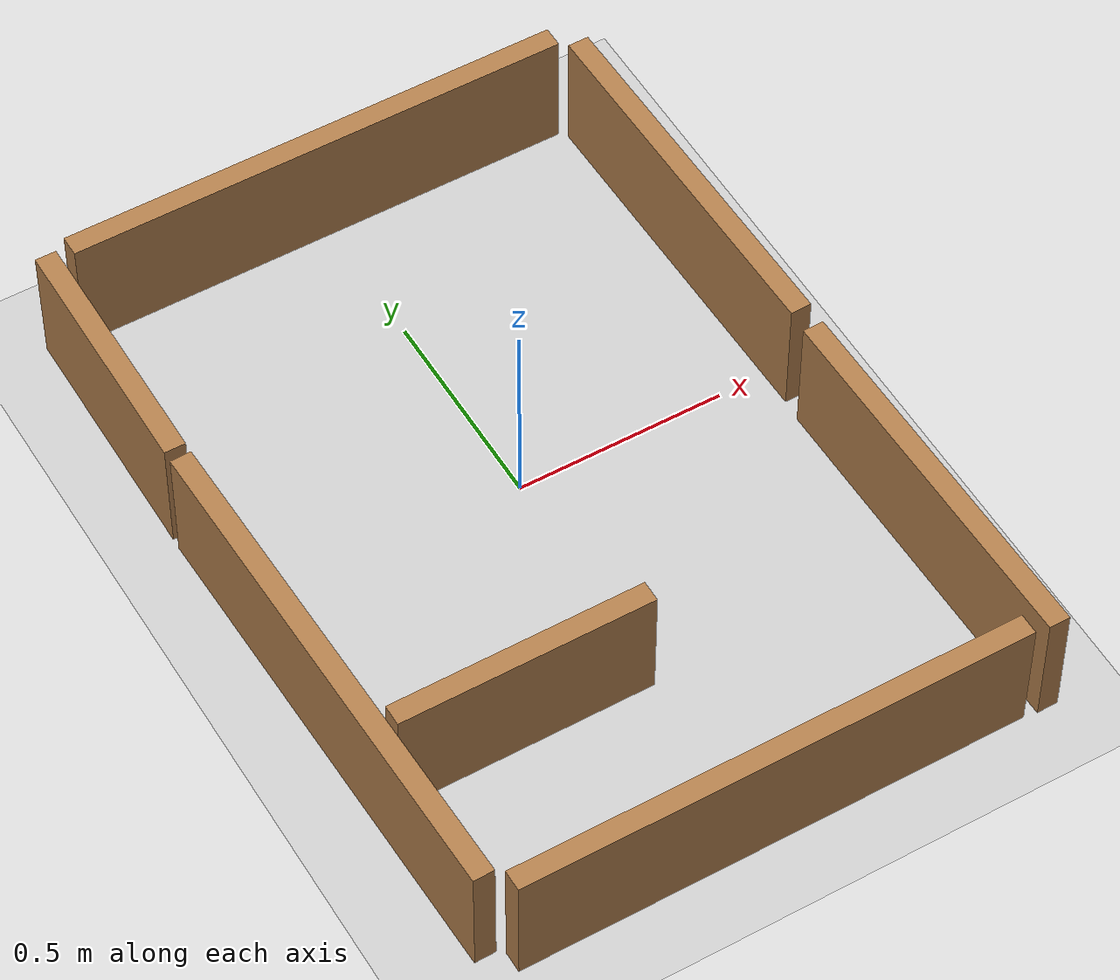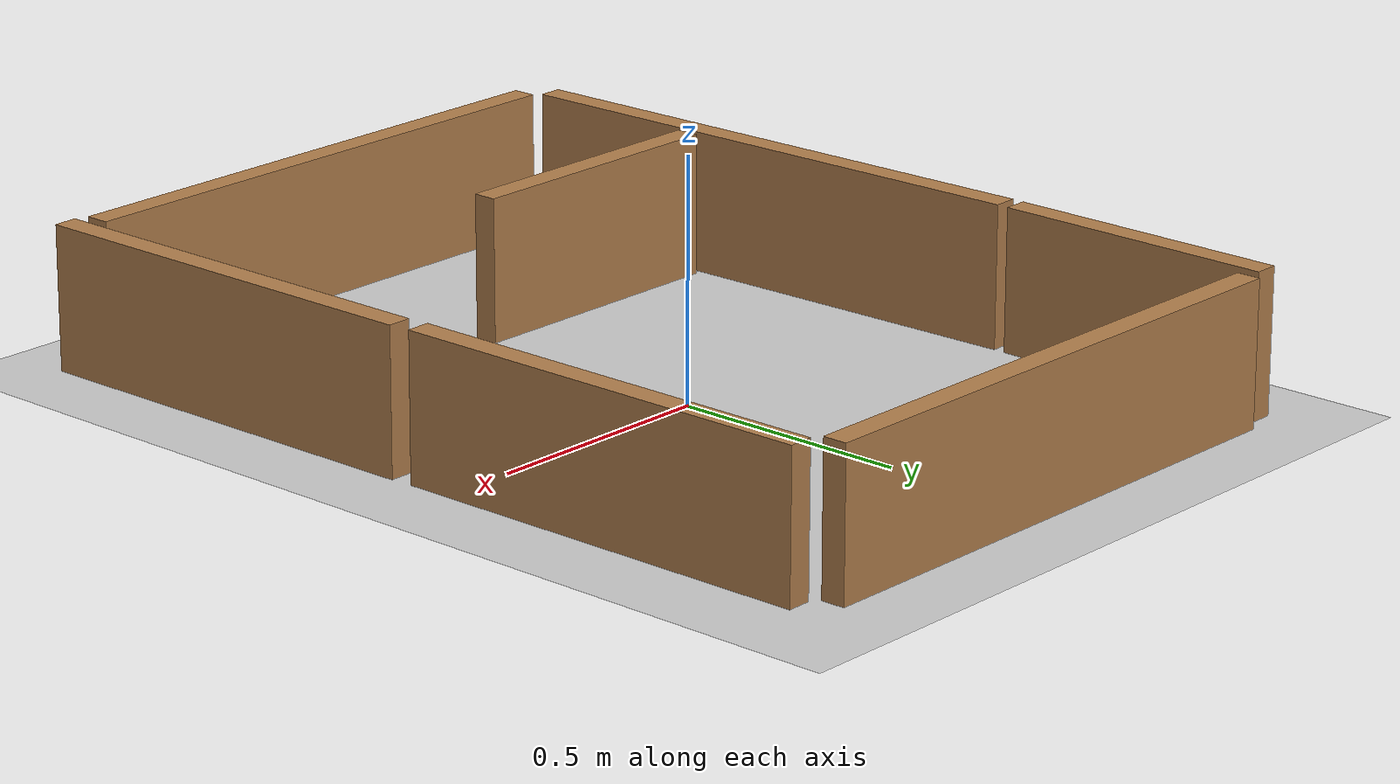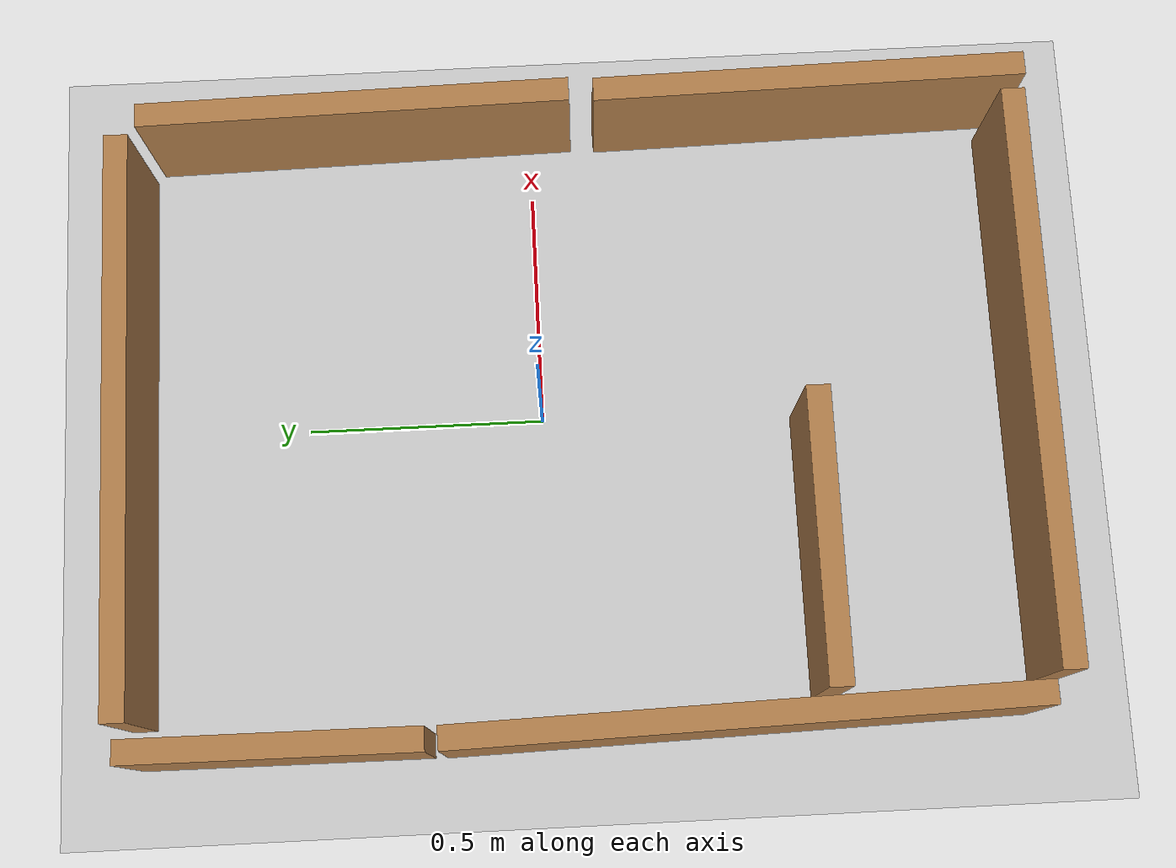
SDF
<sdf version="1.7">
 <world name="default">
  <light name="sun" type="directional">
   <pose>0 0 10 0 -0 0</pose>
   <diffuse>0.8 0.8 0.8 1</diffuse>
   <specular>0.2 0.2 0.2 1</specular>
   <attenuation>
    <range>1000</range>
    <constant>0.9</constant>
    <linear>0.01</linear>
    <quadratic>0.001</quadratic>
   </attenuation>
   <direction>-0.5 0.1 -0.9</direction>
   <spot><inner_angle>0</inner_angle><outer_angle>0</outer_angle><falloff>0</falloff></spot>
  </light>
  <model name="ground_plane">
   <static>1</static>
   <link name="link">
    <collision name="collision">
     <geometry><plane><normal>0 0 1</normal><size>100 100</size></plane></geometry>
     <surface>
      <contact><collide_bitmask>65535</collide_bitmask></contact>
      <friction><ode><mu>100</mu><mu2>50</mu2></ode></friction>
     </surface>
    </collision>
    <visual name="visual">
     <cast_shadows>0</cast_shadows>
     <geometry><plane><normal>0 0 1</normal><size>100 100</size></plane></geometry>
     <material>
      <script><uri>file://media/materials/scripts/gazebo.material</uri><name>Gazebo/Grey</name></script>
     </material>
    </visual>
   </link>
  </model>
  <gravity>0 0 -9.8</gravity>
  <magnetic_field>6e-06 2.3e-05 -4.2e-05</magnetic_field>
  <atmosphere type="adiabatic"/>
  <physics type="ode">
   <max_step_size>0.001</max_step_size>
   <real_time_factor>1</real_time_factor>
   <real_time_update_rate>1000</real_time_update_rate>
  </physics>
  <scene><ambient>0.4 0.4 0.4 1</ambient><background>0.7 0.7 0.7 1</background><shadows>1</shadows></scene>
  <spherical_coordinates>
   <surface_model>EARTH_WGS84</surface_model>
   <latitude_deg>0</latitude_deg>
   <longitude_deg>0</longitude_deg>
   <elevation>0</elevation>
   <heading_deg>0</heading_deg>
  </spherical_coordinates>
  <model name="wall120cm">
   <pose>-0.006475 -1.00773 0 0 -0 0</pose>
   <link name="Wall_11">
    <collision name="Wall_11_Collision">
     <geometry><box><size>1.2 0.05 0.3</size></box></geometry>
     <pose>0 0 0.15 0 -0 0</pose>
    </collision>
    <visual name="Wall_11_Visual">
     <pose>0 0 0.15 0 -0 0</pose>
     <geometry><box><size>1.2 0.05 0.3</size></box></geometry>
     <material>
      <script><uri>file://media/materials/scripts/gazebo.material</uri><name>Gazebo/Wood</name></script>
      <ambient>1 1 1 1</ambient>
     </material>
     <meta><layer>0</layer></meta>
    </visual>
   </link>
   <static>1</static>
  </model>
  <model name="wall90cm">
   <pose>0.641551 -0.588606 0 5.2e-05 0.003482 1.58569</pose>
   <link name="Wall_6">
    <collision name="Wall_6_Collision">
     <geometry><box><size>0.9 0.05 0.3</size></box></geometry>
     <pose>0 0 0.15 0 -0 0</pose>
    </collision>
    <visual name="Wall_6_Visual">
     <pose>0 0 0.15 0 -0 0</pose>
     <geometry><box><size>0.9 0.05 0.3</size></box></geometry>
     <material>
      <script><uri>file://media/materials/scripts/gazebo.material</uri><name>Gazebo/Wood</name></script>
      <ambient>1 1 1 1</ambient>
     </material>
     <meta><layer>0</layer></meta>
    </visual>
   </link>
   <static>1</static>
  </model>
  <model name="wall90cm_clone">
   <pose>0.630855 0.362043 0 5.2e-05 0.003482 1.58569</pose>
   <link name="Wall_6">
    <collision name="Wall_6_Collision">
     <geometry><box><size>0.9 0.05 0.3</size></box></geometry>
     <pose>0 0 0.15 0 -0 0</pose>
    </collision>
    <visual name="Wall_6_Visual">
     <pose>0 0 0.15 0 -0 0</pose>
     <geometry><box><size>0.9 0.05 0.3</size></box></geometry>
     <material>
      <script><uri>file://media/materials/scripts/gazebo.material</uri><name>Gazebo/Wood</name></script>
      <ambient>1 1 1 1</ambient>
     </material>
     <meta><layer>0</layer></meta>
    </visual>
   </link>
   <static>1</static>
  </model>
  <model name="wall120cm_0">
   <pose>-0.661693 -0.371308 0 0 -0 1.59539</pose>
   <link name="Wall_11">
    <collision name="Wall_11_Collision">
     <geometry><box><size>1.2 0.05 0.3</size></box></geometry>
     <pose>0 0 0.15 0 -0 0</pose>
    </collision>
    <visual name="Wall_11_Visual">
     <pose>0 0 0.15 0 -0 0</pose>
     <geometry><box><size>1.2 0.05 0.3</size></box></geometry>
     <material>
      <script><uri>file://media/materials/scripts/gazebo.material</uri><name>Gazebo/Wood</name></script>
      <ambient>1 1 1 1</ambient>
     </material>
     <meta><layer>0</layer></meta>
    </visual>
   </link>
   <static>1</static>
  </model>
  <model name="wall60cm">
   <pose>-0.674294 0.553553 0 0 -0 1.56539</pose>
   <link name="Wall_4">
    <collision name="Wall_4_Collision">
     <geometry><box><size>0.6 0.05 0.3</size></box></geometry>
     <pose>0 0 0.15 0 -0 0</pose>
    </collision>
    <visual name="Wall_4_Visual">
     <pose>0 0 0.15 0 -0 0</pose>
     <geometry><box><size>0.6 0.05 0.3</size></box></geometry>
     <material>
      <script><uri>file://media/materials/scripts/gazebo.material</uri><name>Gazebo/Wood</name></script>
      <ambient>1 1 1 1</ambient>
     </material>
     <meta><layer>0</layer></meta>
    </visual>
   </link>
   <static>1</static>
  </model>
  <model name="wall120cm_1">
   <pose>-0.017343 0.851884 0 0 -0 0</pose>
   <link name="Wall_11">
    <collision name="Wall_11_Collision">
     <geometry><box><size>1.2 0.05 0.3</size></box></geometry>
     <pose>0 0 0.15 0 -0 0</pose>
    </collision>
    <visual name="Wall_11_Visual">
     <pose>0 0 0.15 0 -0 0</pose>
     <geometry><box><size>1.2 0.05 0.3</size></box></geometry>
     <material>
      <script><uri>file://media/materials/scripts/gazebo.material</uri><name>Gazebo/Wood</name></script>
      <ambient>1 1 1 1</ambient>
     </material>
     <meta><layer>0</layer></meta>
    </visual>
   </link>
   <static>1</static>
  </model>
  <model name="wall60cm_0">
   <pose>-0.317538 -0.554747 0 0 -0 0</pose>
   <link name="Wall_4">
    <collision name="Wall_4_Collision">
     <geometry><box><size>0.6 0.05 0.3</size></box></geometry>
     <pose>0 0 0.15 0 -0 0</pose>
    </collision>
    <visual name="Wall_4_Visual">
     <pose>0 0 0.15 0 -0 0</pose>
     <geometry><box><size>0.6 0.05 0.3</size></box></geometry>
     <material>
      <script><uri>file://media/materials/scripts/gazebo.material</uri><name>Gazebo/Wood</name></script>
      <ambient>1 1 1 1</ambient>
     </material>
     <meta><layer>0</layer></meta>
    </visual>
   </link>
   <static>1</static>
  </model>
 </world>
</sdf>
